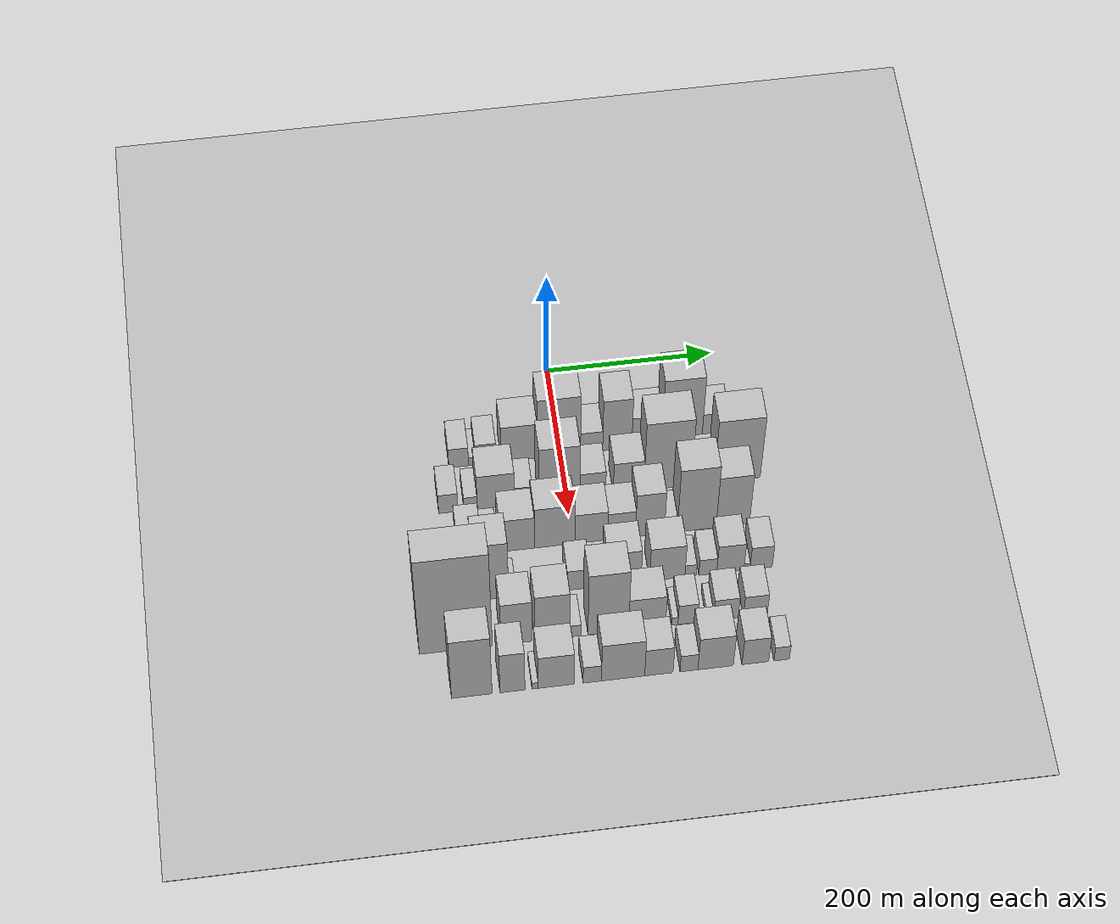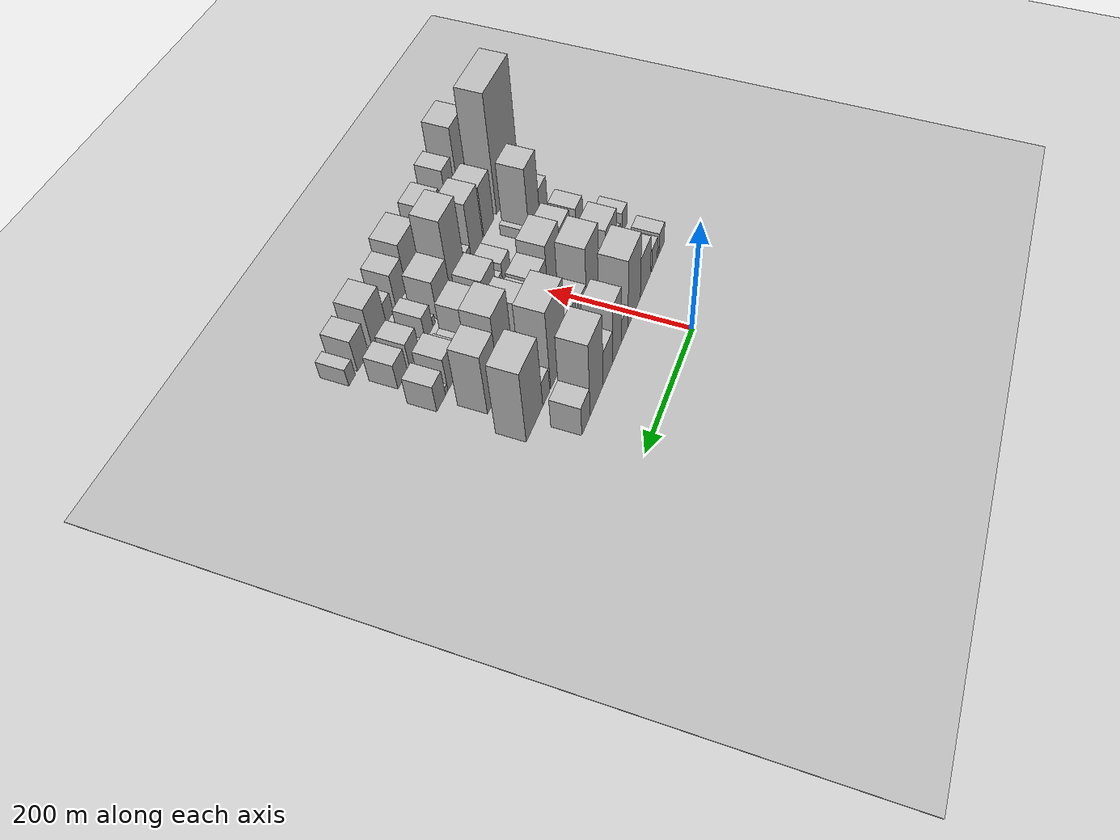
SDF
<sdf version="1.6">
 <world name="default">
  <include><name>ground_plane_1</name><uri>model://HANNAS_ground_plane</uri></include>
  <include>
   <name>ground_plane_2</name>
   <uri>model://HANNAS_ground_plane</uri>
   <pose>100 0 0  0 0 0</pose>
  </include>
  <model name="building_22">
   <static>1</static>
   <pose>100.0000 -120.5780 0 0.000000 0.000000 0.000000</pose>
   <link name="link">
    <pose>0 0 21.00 0 0 0</pose>
    <collision name="collision"><geometry><box><size>40.0000 23.5081 42.0000</size></box></geometry></collision>
    <visual name="visual">
     <cast_shadows>0</cast_shadows>
     <geometry><box><size>40.0000 23.5081 42.0000</size></box></geometry>
     <material>
      <script>
       <uri>model://HANNAS_wall/materials/scripts</uri>
       <uri>model://HANNAS_wall/materials/textures</uri>
       <name>vrc/HANNAS_wall</name>
      </script>
     </material>
    </visual>
   </link>
  </model>
  <model name="building_23">
   <static>1</static>
   <pose>100.0000 -104.7559 0 0.000000 0.000000 0.000000</pose>
   <link name="link">
    <pose>0 0 9.00 0 0 0</pose>
    <collision name="collision"><geometry><box><size>40.0000 8.1360 18.0000</size></box></geometry></collision>
    <visual name="visual">
     <cast_shadows>0</cast_shadows>
     <geometry><box><size>40.0000 8.1360 18.0000</size></box></geometry>
     <material>
      <script>
       <uri>model://HANNAS_wall/materials/scripts</uri>
       <uri>model://HANNAS_wall/materials/textures</uri>
       <name>vrc/HANNAS_wall</name>
      </script>
     </material>
    </visual>
   </link>
  </model>
  <model name="building_24">
   <static>1</static>
   <pose>100.0000 -88.2923 0 0.000000 0.000000 0.000000</pose>
   <link name="link">
    <pose>0 0 22.50 0 0 0</pose>
    <collision name="collision"><geometry><box><size>40.0000 24.7913 45.0000</size></box></geometry></collision>
    <visual name="visual">
     <cast_shadows>0</cast_shadows>
     <geometry><box><size>40.0000 24.7913 45.0000</size></box></geometry>
     <material>
      <script>
       <uri>model://HANNAS_wall/materials/scripts</uri>
       <uri>model://HANNAS_wall/materials/textures</uri>
       <name>vrc/HANNAS_wall</name>
      </script>
     </material>
    </visual>
   </link>
  </model>
  <model name="building_25">
   <static>1</static>
   <pose>100.0000 -48.3048 0 0.000000 0.000000 0.000000</pose>
   <link name="link">
    <pose>0 0 39.00 0 0 0</pose>
    <collision name="collision"><geometry><box><size>40.0000 43.1838 78.0000</size></box></geometry></collision>
    <visual name="visual">
     <cast_shadows>0</cast_shadows>
     <geometry><box><size>40.0000 43.1838 78.0000</size></box></geometry>
     <material>
      <script>
       <uri>model://HANNAS_wall/materials/scripts</uri>
       <uri>model://HANNAS_wall/materials/textures</uri>
       <name>vrc/HANNAS_wall</name>
      </script>
     </material>
    </visual>
   </link>
  </model>
  <model name="building_26">
   <static>1</static>
   <pose>100.0000 -0.9297 0 0.000000 0.000000 0.000000</pose>
   <link name="link">
    <pose>0 0 64.50 0 0 0</pose>
    <collision name="collision"><geometry><box><size>40.0000 51.5664 129.0000</size></box></geometry></collision>
    <visual name="visual">
     <cast_shadows>0</cast_shadows>
     <geometry><box><size>40.0000 51.5664 129.0000</size></box></geometry>
     <material>
      <script>
       <uri>model://HANNAS_wall/materials/scripts</uri>
       <uri>model://HANNAS_wall/materials/textures</uri>
       <name>vrc/HANNAS_wall</name>
      </script>
     </material>
    </visual>
   </link>
  </model>
  <model name="building_27">
   <static>1</static>
   <pose>100.0000 38.0958 0 0.000000 0.000000 0.000000</pose>
   <link name="link">
    <pose>0 0 22.50 0 0 0</pose>
    <collision name="collision"><geometry><box><size>40.0000 26.4845 45.0000</size></box></geometry></collision>
    <visual name="visual">
     <cast_shadows>0</cast_shadows>
     <geometry><box><size>40.0000 26.4845 45.0000</size></box></geometry>
     <material>
      <script>
       <uri>model://HANNAS_wall/materials/scripts</uri>
       <uri>model://HANNAS_wall/materials/textures</uri>
       <name>vrc/HANNAS_wall</name>
      </script>
     </material>
    </visual>
   </link>
  </model>
  <model name="building_28">
   <static>1</static>
   <pose>100.0000 68.7779 0 0.000000 0.000000 0.000000</pose>
   <link name="link">
    <pose>0 0 55.50 0 0 0</pose>
    <collision name="collision"><geometry><box><size>40.0000 34.8797 111.0000</size></box></geometry></collision>
    <visual name="visual">
     <cast_shadows>0</cast_shadows>
     <geometry><box><size>40.0000 34.8797 111.0000</size></box></geometry>
     <material>
      <script>
       <uri>model://HANNAS_wall/materials/scripts</uri>
       <uri>model://HANNAS_wall/materials/textures</uri>
       <name>vrc/HANNAS_wall</name>
      </script>
     </material>
    </visual>
   </link>
  </model>
  <model name="building_29">
   <static>1</static>
   <pose>100.0000 104.3803 0 0.000000 0.000000 0.000000</pose>
   <link name="link">
    <pose>0 0 33.00 0 0 0</pose>
    <collision name="collision"><geometry><box><size>40.0000 36.3250 66.0000</size></box></geometry></collision>
    <visual name="visual">
     <cast_shadows>0</cast_shadows>
     <geometry><box><size>40.0000 36.3250 66.0000</size></box></geometry>
     <material>
      <script>
       <uri>model://HANNAS_wall/materials/scripts</uri>
       <uri>model://HANNAS_wall/materials/textures</uri>
       <name>vrc/HANNAS_wall</name>
      </script>
     </material>
    </visual>
   </link>
  </model>
  <model name="building_30">
   <static>1</static>
   <pose>100.0000 146.4982 0 0.000000 0.000000 0.000000</pose>
   <link name="link">
    <pose>0 0 70.50 0 0 0</pose>
    <collision name="collision"><geometry><box><size>40.0000 47.9109 141.0000</size></box></geometry></collision>
    <visual name="visual">
     <cast_shadows>0</cast_shadows>
     <geometry><box><size>40.0000 47.9109 141.0000</size></box></geometry>
     <material>
      <script>
       <uri>model://HANNAS_wall/materials/scripts</uri>
       <uri>model://HANNAS_wall/materials/textures</uri>
       <name>vrc/HANNAS_wall</name>
      </script>
     </material>
    </visual>
   </link>
  </model>
  <model name="building_31">
   <static>1</static>
   <pose>100.0000 185.6217 0 0.000000 0.000000 0.000000</pose>
   <link name="link">
    <pose>0 0 28.50 0 0 0</pose>
    <collision name="collision"><geometry><box><size>40.0000 30.3360 57.0000</size></box></geometry></collision>
    <visual name="visual">
     <cast_shadows>0</cast_shadows>
     <geometry><box><size>40.0000 30.3360 57.0000</size></box></geometry>
     <material>
      <script>
       <uri>model://HANNAS_wall/materials/scripts</uri>
       <uri>model://HANNAS_wall/materials/textures</uri>
       <name>vrc/HANNAS_wall</name>
      </script>
     </material>
    </visual>
   </link>
  </model>
  <model name="building_80">
   <static>1</static>
   <pose>160.0000 -139.4442 0 0.000000 0.000000 0.000000</pose>
   <link name="link">
    <pose>0 0 21.00 0 0 0</pose>
    <collision name="collision"><geometry><box><size>40.0000 22.8918 42.0000</size></box></geometry></collision>
    <visual name="visual">
     <cast_shadows>0</cast_shadows>
     <geometry><box><size>40.0000 22.8918 42.0000</size></box></geometry>
     <material>
      <script>
       <uri>model://HANNAS_wall/materials/scripts</uri>
       <uri>model://HANNAS_wall/materials/textures</uri>
       <name>vrc/HANNAS_wall</name>
      </script>
     </material>
    </visual>
   </link>
  </model>
  <model name="building_81">
   <static>1</static>
   <pose>160.0000 -113.1133 0 0.000000 0.000000 0.000000</pose>
   <link name="link">
    <pose>0 0 15.00 0 0 0</pose>
    <collision name="collision"><geometry><box><size>40.0000 15.7700 30.0000</size></box></geometry></collision>
    <visual name="visual">
     <cast_shadows>0</cast_shadows>
     <geometry><box><size>40.0000 15.7700 30.0000</size></box></geometry>
     <material>
      <script>
       <uri>model://HANNAS_wall/materials/scripts</uri>
       <uri>model://HANNAS_wall/materials/textures</uri>
       <name>vrc/HANNAS_wall</name>
      </script>
     </material>
    </visual>
   </link>
  </model>
  <model name="building_82">
   <static>1</static>
   <pose>160.0000 -83.1640 0 0.000000 0.000000 0.000000</pose>
   <link name="link">
    <pose>0 0 37.50 0 0 0</pose>
    <collision name="collision"><geometry><box><size>40.0000 44.1286 75.0000</size></box></geometry></collision>
    <visual name="visual">
     <cast_shadows>0</cast_shadows>
     <geometry><box><size>40.0000 44.1286 75.0000</size></box></geometry>
     <material>
      <script>
       <uri>model://HANNAS_wall/materials/scripts</uri>
       <uri>model://HANNAS_wall/materials/textures</uri>
       <name>vrc/HANNAS_wall</name>
      </script>
     </material>
    </visual>
   </link>
  </model>
  <model name="building_83">
   <static>1</static>
   <pose>160.0000 -50.5367 0 0.000000 0.000000 0.000000</pose>
   <link name="link">
    <pose>0 0 19.50 0 0 0</pose>
    <collision name="collision"><geometry><box><size>40.0000 21.1261 39.0000</size></box></geometry></collision>
    <visual name="visual">
     <cast_shadows>0</cast_shadows>
     <geometry><box><size>40.0000 21.1261 39.0000</size></box></geometry>
     <material>
      <script>
       <uri>model://HANNAS_wall/materials/scripts</uri>
       <uri>model://HANNAS_wall/materials/textures</uri>
       <name>vrc/HANNAS_wall</name>
      </script>
     </material>
    </visual>
   </link>
  </model>
  <model name="building_84">
   <static>1</static>
   <pose>160.0000 -8.0050 0 0.000000 0.000000 0.000000</pose>
   <link name="link">
    <pose>0 0 60.00 0 0 0</pose>
    <collision name="collision"><geometry><box><size>40.0000 47.9373 120.0000</size></box></geometry></collision>
    <visual name="visual">
     <cast_shadows>0</cast_shadows>
     <geometry><box><size>40.0000 47.9373 120.0000</size></box></geometry>
     <material>
      <script>
       <uri>model://HANNAS_wall/materials/scripts</uri>
       <uri>model://HANNAS_wall/materials/textures</uri>
       <name>vrc/HANNAS_wall</name>
      </script>
     </material>
    </visual>
   </link>
  </model>
  <model name="building_85">
   <static>1</static>
   <pose>160.0000 31.3682 0 0.000000 0.000000 0.000000</pose>
   <link name="link">
    <pose>0 0 27.00 0 0 0</pose>
    <collision name="collision"><geometry><box><size>40.0000 30.8090 54.0000</size></box></geometry></collision>
    <visual name="visual">
     <cast_shadows>0</cast_shadows>
     <geometry><box><size>40.0000 30.8090 54.0000</size></box></geometry>
     <material>
      <script>
       <uri>model://HANNAS_wall/materials/scripts</uri>
       <uri>model://HANNAS_wall/materials/textures</uri>
       <name>vrc/HANNAS_wall</name>
      </script>
     </material>
    </visual>
   </link>
  </model>
  <model name="building_86">
   <static>1</static>
   <pose>160.0000 73.9550 0 0.000000 0.000000 0.000000</pose>
   <link name="link">
    <pose>0 0 34.50 0 0 0</pose>
    <collision name="collision"><geometry><box><size>40.0000 36.3646 69.0000</size></box></geometry></collision>
    <visual name="visual">
     <cast_shadows>0</cast_shadows>
     <geometry><box><size>40.0000 36.3646 69.0000</size></box></geometry>
     <material>
      <script>
       <uri>model://HANNAS_wall/materials/scripts</uri>
       <uri>model://HANNAS_wall/materials/textures</uri>
       <name>vrc/HANNAS_wall</name>
      </script>
     </material>
    </visual>
   </link>
  </model>
  <model name="building_87">
   <static>1</static>
   <pose>160.0000 120.4749 0 0.000000 0.000000 0.000000</pose>
   <link name="link">
    <pose>0 0 75.00 0 0 0</pose>
    <collision name="collision"><geometry><box><size>40.0000 56.6753 150.0000</size></box></geometry></collision>
    <visual name="visual">
     <cast_shadows>0</cast_shadows>
     <geometry><box><size>40.0000 56.6753 150.0000</size></box></geometry>
     <material>
      <script>
       <uri>model://HANNAS_wall/materials/scripts</uri>
       <uri>model://HANNAS_wall/materials/textures</uri>
       <name>vrc/HANNAS_wall</name>
      </script>
     </material>
    </visual>
   </link>
  </model>
  <model name="building_88">
   <static>1</static>
   <pose>160.0000 163.8272 0 0.000000 0.000000 0.000000</pose>
   <link name="link">
    <pose>0 0 24.00 0 0 0</pose>
    <collision name="collision"><geometry><box><size>40.0000 24.0293 48.0000</size></box></geometry></collision>
    <visual name="visual">
     <cast_shadows>0</cast_shadows>
     <geometry><box><size>40.0000 24.0293 48.0000</size></box></geometry>
     <material>
      <script>
       <uri>model://HANNAS_wall/materials/scripts</uri>
       <uri>model://HANNAS_wall/materials/textures</uri>
       <name>vrc/HANNAS_wall</name>
      </script>
     </material>
    </visual>
   </link>
  </model>
  <model name="building_89">
   <static>1</static>
   <pose>160.0000 203.3554 0 0.000000 0.000000 0.000000</pose>
   <link name="link">
    <pose>0 0 69.00 0 0 0</pose>
    <collision name="collision"><geometry><box><size>40.0000 55.0271 138.0000</size></box></geometry></collision>
    <visual name="visual">
     <cast_shadows>0</cast_shadows>
     <geometry><box><size>40.0000 55.0271 138.0000</size></box></geometry>
     <material>
      <script>
       <uri>model://HANNAS_wall/materials/scripts</uri>
       <uri>model://HANNAS_wall/materials/textures</uri>
       <name>vrc/HANNAS_wall</name>
      </script>
     </material>
    </visual>
   </link>
  </model>
  <model name="building_130">
   <static>1</static>
   <pose>220.0000 -121.2214 0 0.000000 0.000000 0.000000</pose>
   <link name="link">
    <pose>0 0 25.50 0 0 0</pose>
    <collision name="collision"><geometry><box><size>40.0000 27.8881 51.0000</size></box></geometry></collision>
    <visual name="visual">
     <cast_shadows>0</cast_shadows>
     <geometry><box><size>40.0000 27.8881 51.0000</size></box></geometry>
     <material>
      <script>
       <uri>model://HANNAS_wall/materials/scripts</uri>
       <uri>model://HANNAS_wall/materials/textures</uri>
       <name>vrc/HANNAS_wall</name>
      </script>
     </material>
    </visual>
   </link>
  </model>
  <model name="building_131">
   <static>1</static>
   <pose>220.0000 -97.7854 0 0.000000 0.000000 0.000000</pose>
   <link name="link">
    <pose>0 0 18.00 0 0 0</pose>
    <collision name="collision"><geometry><box><size>40.0000 18.9839 36.0000</size></box></geometry></collision>
    <visual name="visual">
     <cast_shadows>0</cast_shadows>
     <geometry><box><size>40.0000 18.9839 36.0000</size></box></geometry>
     <material>
      <script>
       <uri>model://HANNAS_wall/materials/scripts</uri>
       <uri>model://HANNAS_wall/materials/textures</uri>
       <name>vrc/HANNAS_wall</name>
      </script>
     </material>
    </visual>
   </link>
  </model>
  <model name="building_132">
   <static>1</static>
   <pose>220.0000 -65.1639 0 0.000000 0.000000 0.000000</pose>
   <link name="link">
    <pose>0 0 36.00 0 0 0</pose>
    <collision name="collision"><geometry><box><size>40.0000 40.2592 72.0000</size></box></geometry></collision>
    <visual name="visual">
     <cast_shadows>0</cast_shadows>
     <geometry><box><size>40.0000 40.2592 72.0000</size></box></geometry>
     <material>
      <script>
       <uri>model://HANNAS_wall/materials/scripts</uri>
       <uri>model://HANNAS_wall/materials/textures</uri>
       <name>vrc/HANNAS_wall</name>
      </script>
     </material>
    </visual>
   </link>
  </model>
  <model name="building_133">
   <static>1</static>
   <pose>220.0000 -21.2294 0 0.000000 0.000000 0.000000</pose>
   <link name="link">
    <pose>0 0 45.00 0 0 0</pose>
    <collision name="collision"><geometry><box><size>40.0000 47.6098 90.0000</size></box></geometry></collision>
    <visual name="visual">
     <cast_shadows>0</cast_shadows>
     <geometry><box><size>40.0000 47.6098 90.0000</size></box></geometry>
     <material>
      <script>
       <uri>model://HANNAS_wall/materials/scripts</uri>
       <uri>model://HANNAS_wall/materials/textures</uri>
       <name>vrc/HANNAS_wall</name>
      </script>
     </material>
    </visual>
   </link>
  </model>
  <model name="building_134">
   <static>1</static>
   <pose>220.0000 21.8665 0 0.000000 0.000000 0.000000</pose>
   <link name="link">
    <pose>0 0 33.00 0 0 0</pose>
    <collision name="collision"><geometry><box><size>40.0000 38.5819 66.0000</size></box></geometry></collision>
    <visual name="visual">
     <cast_shadows>0</cast_shadows>
     <geometry><box><size>40.0000 38.5819 66.0000</size></box></geometry>
     <material>
      <script>
       <uri>model://HANNAS_wall/materials/scripts</uri>
       <uri>model://HANNAS_wall/materials/textures</uri>
       <name>vrc/HANNAS_wall</name>
      </script>
     </material>
    </visual>
   </link>
  </model>
  <model name="building_135">
   <static>1</static>
   <pose>220.0000 57.3773 0 0.000000 0.000000 0.000000</pose>
   <link name="link">
    <pose>0 0 30.00 0 0 0</pose>
    <collision name="collision"><geometry><box><size>40.0000 32.4398 60.0000</size></box></geometry></collision>
    <visual name="visual">
     <cast_shadows>0</cast_shadows>
     <geometry><box><size>40.0000 32.4398 60.0000</size></box></geometry>
     <material>
      <script>
       <uri>model://HANNAS_wall/materials/scripts</uri>
       <uri>model://HANNAS_wall/materials/textures</uri>
       <name>vrc/HANNAS_wall</name>
      </script>
     </material>
    </visual>
   </link>
  </model>
  <model name="building_136">
   <static>1</static>
   <pose>220.0000 90.6429 0 0.000000 0.000000 0.000000</pose>
   <link name="link">
    <pose>0 0 48.00 0 0 0</pose>
    <collision name="collision"><geometry><box><size>40.0000 34.0913 96.0000</size></box></geometry></collision>
    <visual name="visual">
     <cast_shadows>0</cast_shadows>
     <geometry><box><size>40.0000 34.0913 96.0000</size></box></geometry>
     <material>
      <script>
       <uri>model://HANNAS_wall/materials/scripts</uri>
       <uri>model://HANNAS_wall/materials/textures</uri>
       <name>vrc/HANNAS_wall</name>
      </script>
     </material>
    </visual>
   </link>
  </model>
  <model name="building_137">
   <static>1</static>
   <pose>220.0000 115.3099 0 0.000000 0.000000 0.000000</pose>
   <link name="link">
    <pose>0 0 15.00 0 0 0</pose>
    <collision name="collision"><geometry><box><size>40.0000 15.2427 30.0000</size></box></geometry></collision>
    <visual name="visual">
     <cast_shadows>0</cast_shadows>
     <geometry><box><size>40.0000 15.2427 30.0000</size></box></geometry>
     <material>
      <script>
       <uri>model://HANNAS_wall/materials/scripts</uri>
       <uri>model://HANNAS_wall/materials/textures</uri>
       <name>vrc/HANNAS_wall</name>
      </script>
     </material>
    </visual>
   </link>
  </model>
  <model name="building_138">
   <static>1</static>
   <pose>220.0000 145.8488 0 0.000000 0.000000 0.000000</pose>
   <link name="link">
    <pose>0 0 70.50 0 0 0</pose>
    <collision name="collision"><geometry><box><size>40.0000 45.8351 141.0000</size></box></geometry></collision>
    <visual name="visual">
     <cast_shadows>0</cast_shadows>
     <geometry><box><size>40.0000 45.8351 141.0000</size></box></geometry>
     <material>
      <script>
       <uri>model://HANNAS_wall/materials/scripts</uri>
       <uri>model://HANNAS_wall/materials/textures</uri>
       <name>vrc/HANNAS_wall</name>
      </script>
     </material>
    </visual>
   </link>
  </model>
  <model name="building_139">
   <static>1</static>
   <pose>220.0000 188.4964 0 0.000000 0.000000 0.000000</pose>
   <link name="link">
    <pose>0 0 57.00 0 0 0</pose>
    <collision name="collision"><geometry><box><size>40.0000 39.4601 114.0000</size></box></geometry></collision>
    <visual name="visual">
     <cast_shadows>0</cast_shadows>
     <geometry><box><size>40.0000 39.4601 114.0000</size></box></geometry>
     <material>
      <script>
       <uri>model://HANNAS_wall/materials/scripts</uri>
       <uri>model://HANNAS_wall/materials/textures</uri>
       <name>vrc/HANNAS_wall</name>
      </script>
     </material>
    </visual>
   </link>
  </model>
  <model name="building_181">
   <static>1</static>
   <pose>280.0000 -137.0835 0 0.000000 0.000000 0.000000</pose>
   <link name="link">
    <pose>0 0 27.00 0 0 0</pose>
    <collision name="collision"><geometry><box><size>40.0000 29.7304 54.0000</size></box></geometry></collision>
    <visual name="visual">
     <cast_shadows>0</cast_shadows>
     <geometry><box><size>40.0000 29.7304 54.0000</size></box></geometry>
     <material>
      <script>
       <uri>model://HANNAS_wall/materials/scripts</uri>
       <uri>model://HANNAS_wall/materials/textures</uri>
       <name>vrc/HANNAS_wall</name>
      </script>
     </material>
    </visual>
   </link>
  </model>
  <model name="building_182">
   <static>1</static>
   <pose>280.0000 -102.4195 0 0.000000 0.000000 0.000000</pose>
   <link name="link">
    <pose>0 0 64.50 0 0 0</pose>
    <collision name="collision"><geometry><box><size>40.0000 39.5976 129.0000</size></box></geometry></collision>
    <visual name="visual">
     <cast_shadows>0</cast_shadows>
     <geometry><box><size>40.0000 39.5976 129.0000</size></box></geometry>
     <material>
      <script>
       <uri>model://HANNAS_wall/materials/scripts</uri>
       <uri>model://HANNAS_wall/materials/textures</uri>
       <name>vrc/HANNAS_wall</name>
      </script>
     </material>
    </visual>
   </link>
  </model>
  <model name="building_183">
   <static>1</static>
   <pose>280.0000 -78.2940 0 0.000000 0.000000 0.000000</pose>
   <link name="link">
    <pose>0 0 10.50 0 0 0</pose>
    <collision name="collision"><geometry><box><size>40.0000 8.6533 21.0000</size></box></geometry></collision>
    <visual name="visual">
     <cast_shadows>0</cast_shadows>
     <geometry><box><size>40.0000 8.6533 21.0000</size></box></geometry>
     <material>
      <script>
       <uri>model://HANNAS_wall/materials/scripts</uri>
       <uri>model://HANNAS_wall/materials/textures</uri>
       <name>vrc/HANNAS_wall</name>
      </script>
     </material>
    </visual>
   </link>
  </model>
  <model name="building_184">
   <static>1</static>
   <pose>280.0000 -1.3140 0 0.000000 0.000000 0.000000</pose>
   <link name="link">
    <pose>0 0 22.50 0 0 0</pose>
    <collision name="collision"><geometry><box><size>40.0000 26.4356 45.0000</size></box></geometry></collision>
    <visual name="visual">
     <cast_shadows>0</cast_shadows>
     <geometry><box><size>40.0000 26.4356 45.0000</size></box></geometry>
     <material>
      <script>
       <uri>model://HANNAS_wall/materials/scripts</uri>
       <uri>model://HANNAS_wall/materials/textures</uri>
       <name>vrc/HANNAS_wall</name>
      </script>
     </material>
    </visual>
   </link>
  </model>
  <model name="building_185">
   <static>1</static>
   <pose>280.0000 19.4774 0 0.000000 0.000000 0.000000</pose>
   <link name="link">
    <pose>0 0 15.00 0 0 0</pose>
    <collision name="collision"><geometry><box><size>40.0000 15.1472 30.0000</size></box></geometry></collision>
    <visual name="visual">
     <cast_shadows>0</cast_shadows>
     <geometry><box><size>40.0000 15.1472 30.0000</size></box></geometry>
     <material>
      <script>
       <uri>model://HANNAS_wall/materials/scripts</uri>
       <uri>model://HANNAS_wall/materials/textures</uri>
       <name>vrc/HANNAS_wall</name>
      </script>
     </material>
    </visual>
   </link>
  </model>
  <model name="building_186">
   <static>1</static>
   <pose>280.0000 51.8087 0 0.000000 0.000000 0.000000</pose>
   <link name="link">
    <pose>0 0 37.50 0 0 0</pose>
    <collision name="collision"><geometry><box><size>40.0000 39.5154 75.0000</size></box></geometry></collision>
    <visual name="visual">
     <cast_shadows>0</cast_shadows>
     <geometry><box><size>40.0000 39.5154 75.0000</size></box></geometry>
     <material>
      <script>
       <uri>model://HANNAS_wall/materials/scripts</uri>
       <uri>model://HANNAS_wall/materials/textures</uri>
       <name>vrc/HANNAS_wall</name>
      </script>
     </material>
    </visual>
   </link>
  </model>
  <model name="building_187">
   <static>1</static>
   <pose>280.0000 102.1870 0 0.000000 0.000000 0.000000</pose>
   <link name="link">
    <pose>0 0 37.50 0 0 0</pose>
    <collision name="collision"><geometry><box><size>40.0000 41.2413 75.0000</size></box></geometry></collision>
    <visual name="visual">
     <cast_shadows>0</cast_shadows>
     <geometry><box><size>40.0000 41.2413 75.0000</size></box></geometry>
     <material>
      <script>
       <uri>model://HANNAS_wall/materials/scripts</uri>
       <uri>model://HANNAS_wall/materials/textures</uri>
       <name>vrc/HANNAS_wall</name>
      </script>
     </material>
    </visual>
   </link>
  </model>
  <model name="building_188">
   <static>1</static>
   <pose>280.0000 129.5320 0 0.000000 0.000000 0.000000</pose>
   <link name="link">
    <pose>0 0 13.50 0 0 0</pose>
    <collision name="collision"><geometry><box><size>40.0000 13.4486 27.0000</size></box></geometry></collision>
    <visual name="visual">
     <cast_shadows>0</cast_shadows>
     <geometry><box><size>40.0000 13.4486 27.0000</size></box></geometry>
     <material>
      <script>
       <uri>model://HANNAS_wall/materials/scripts</uri>
       <uri>model://HANNAS_wall/materials/textures</uri>
       <name>vrc/HANNAS_wall</name>
      </script>
     </material>
    </visual>
   </link>
  </model>
  <model name="building_189">
   <static>1</static>
   <pose>280.0000 149.7160 0 0.000000 0.000000 0.000000</pose>
   <link name="link">
    <pose>0 0 18.00 0 0 0</pose>
    <collision name="collision"><geometry><box><size>40.0000 20.9194 36.0000</size></box></geometry></collision>
    <visual name="visual">
     <cast_shadows>0</cast_shadows>
     <geometry><box><size>40.0000 20.9194 36.0000</size></box></geometry>
     <material>
      <script>
       <uri>model://HANNAS_wall/materials/scripts</uri>
       <uri>model://HANNAS_wall/materials/textures</uri>
       <name>vrc/HANNAS_wall</name>
      </script>
     </material>
    </visual>
   </link>
  </model>
  <model name="building_190">
   <static>1</static>
   <pose>280.0000 176.0849 0 0.000000 0.000000 0.000000</pose>
   <link name="link">
    <pose>0 0 31.50 0 0 0</pose>
    <collision name="collision"><geometry><box><size>40.0000 31.8184 63.0000</size></box></geometry></collision>
    <visual name="visual">
     <cast_shadows>0</cast_shadows>
     <geometry><box><size>40.0000 31.8184 63.0000</size></box></geometry>
     <material>
      <script>
       <uri>model://HANNAS_wall/materials/scripts</uri>
       <uri>model://HANNAS_wall/materials/textures</uri>
       <name>vrc/HANNAS_wall</name>
      </script>
     </material>
    </visual>
   </link>
  </model>
  <model name="building_191">
   <static>1</static>
   <pose>280.0000 195.6024 0 0.000000 0.000000 0.000000</pose>
   <link name="link">
    <pose>0 0 7.50 0 0 0</pose>
    <collision name="collision"><geometry><box><size>40.0000 7.2167 15.0000</size></box></geometry></collision>
    <visual name="visual">
     <cast_shadows>0</cast_shadows>
     <geometry><box><size>40.0000 7.2167 15.0000</size></box></geometry>
     <material>
      <script>
       <uri>model://HANNAS_wall/materials/scripts</uri>
       <uri>model://HANNAS_wall/materials/textures</uri>
       <name>vrc/HANNAS_wall</name>
      </script>
     </material>
    </visual>
   </link>
  </model>
  <model name="building_192">
   <static>1</static>
   <pose>280.0000 212.2427 0 0.000000 0.000000 0.000000</pose>
   <link name="link">
    <pose>0 0 25.50 0 0 0</pose>
    <collision name="collision"><geometry><box><size>40.0000 26.0639 51.0000</size></box></geometry></collision>
    <visual name="visual">
     <cast_shadows>0</cast_shadows>
     <geometry><box><size>40.0000 26.0639 51.0000</size></box></geometry>
     <material>
      <script>
       <uri>model://HANNAS_wall/materials/scripts</uri>
       <uri>model://HANNAS_wall/materials/textures</uri>
       <name>vrc/HANNAS_wall</name>
      </script>
     </material>
    </visual>
   </link>
  </model>
  <model name="building_234">
   <static>1</static>
   <pose>340.0000 -150.5893 0 0.000000 0.000000 0.000000</pose>
   <link name="link">
    <pose>0 0 109.50 0 0 0</pose>
    <collision name="collision"><geometry><box><size>40.0000 83.8002 219.0000</size></box></geometry></collision>
    <visual name="visual">
     <cast_shadows>0</cast_shadows>
     <geometry><box><size>40.0000 83.8002 219.0000</size></box></geometry>
     <material>
      <script>
       <uri>model://HANNAS_wall/materials/scripts</uri>
       <uri>model://HANNAS_wall/materials/textures</uri>
       <name>vrc/HANNAS_wall</name>
      </script>
     </material>
    </visual>
   </link>
  </model>
  <model name="building_235">
   <static>1</static>
   <pose>340.0000 -80.6524 0 0.000000 0.000000 0.000000</pose>
   <link name="link">
    <pose>0 0 48.00 0 0 0</pose>
    <collision name="collision"><geometry><box><size>40.0000 36.0737 96.0000</size></box></geometry></collision>
    <visual name="visual">
     <cast_shadows>0</cast_shadows>
     <geometry><box><size>40.0000 36.0737 96.0000</size></box></geometry>
     <material>
      <script>
       <uri>model://HANNAS_wall/materials/scripts</uri>
       <uri>model://HANNAS_wall/materials/textures</uri>
       <name>vrc/HANNAS_wall</name>
      </script>
     </material>
    </visual>
   </link>
  </model>
  <model name="building_236">
   <static>1</static>
   <pose>340.0000 -39.5212 0 0.000000 0.000000 0.000000</pose>
   <link name="link">
    <pose>0 0 52.50 0 0 0</pose>
    <collision name="collision"><geometry><box><size>40.0000 40.1887 105.0000</size></box></geometry></collision>
    <visual name="visual">
     <cast_shadows>0</cast_shadows>
     <geometry><box><size>40.0000 40.1887 105.0000</size></box></geometry>
     <material>
      <script>
       <uri>model://HANNAS_wall/materials/scripts</uri>
       <uri>model://HANNAS_wall/materials/textures</uri>
       <name>vrc/HANNAS_wall</name>
      </script>
     </material>
    </visual>
   </link>
  </model>
  <model name="building_237">
   <static>1</static>
   <pose>340.0000 -12.9080 0 0.000000 0.000000 0.000000</pose>
   <link name="link">
    <pose>0 0 13.50 0 0 0</pose>
    <collision name="collision"><geometry><box><size>40.0000 13.0377 27.0000</size></box></geometry></collision>
    <visual name="visual">
     <cast_shadows>0</cast_shadows>
     <geometry><box><size>40.0000 13.0377 27.0000</size></box></geometry>
     <material>
      <script>
       <uri>model://HANNAS_wall/materials/scripts</uri>
       <uri>model://HANNAS_wall/materials/textures</uri>
       <name>vrc/HANNAS_wall</name>
      </script>
     </material>
    </visual>
   </link>
  </model>
  <model name="building_238">
   <static>1</static>
   <pose>340.0000 25.1147 0 0.000000 0.000000 0.000000</pose>
   <link name="link">
    <pose>0 0 70.50 0 0 0</pose>
    <collision name="collision"><geometry><box><size>40.0000 47.0076 141.0000</size></box></geometry></collision>
    <visual name="visual">
     <cast_shadows>0</cast_shadows>
     <geometry><box><size>40.0000 47.0076 141.0000</size></box></geometry>
     <material>
      <script>
       <uri>model://HANNAS_wall/materials/scripts</uri>
       <uri>model://HANNAS_wall/materials/textures</uri>
       <name>vrc/HANNAS_wall</name>
      </script>
     </material>
    </visual>
   </link>
  </model>
  <model name="building_239">
   <static>1</static>
   <pose>340.0000 69.9836 0 0.000000 0.000000 0.000000</pose>
   <link name="link">
    <pose>0 0 36.00 0 0 0</pose>
    <collision name="collision"><geometry><box><size>40.0000 42.7301 72.0000</size></box></geometry></collision>
    <visual name="visual">
     <cast_shadows>0</cast_shadows>
     <geometry><box><size>40.0000 42.7301 72.0000</size></box></geometry>
     <material>
      <script>
       <uri>model://HANNAS_wall/materials/scripts</uri>
       <uri>model://HANNAS_wall/materials/textures</uri>
       <name>vrc/HANNAS_wall</name>
      </script>
     </material>
    </visual>
   </link>
  </model>
  <model name="building_240">
   <static>1</static>
   <pose>340.0000 102.0348 0 0.000000 0.000000 0.000000</pose>
   <link name="link">
    <pose>0 0 9.00 0 0 0</pose>
    <collision name="collision"><geometry><box><size>40.0000 7.3724 18.0000</size></box></geometry></collision>
    <visual name="visual">
     <cast_shadows>0</cast_shadows>
     <geometry><box><size>40.0000 7.3724 18.0000</size></box></geometry>
     <material>
      <script>
       <uri>model://HANNAS_wall/materials/scripts</uri>
       <uri>model://HANNAS_wall/materials/textures</uri>
       <name>vrc/HANNAS_wall</name>
      </script>
     </material>
    </visual>
   </link>
  </model>
  <model name="building_241">
   <static>1</static>
   <pose>340.0000 117.3367 0 0.000000 0.000000 0.000000</pose>
   <link name="link">
    <pose>0 0 22.50 0 0 0</pose>
    <collision name="collision"><geometry><box><size>40.0000 23.2315 45.0000</size></box></geometry></collision>
    <visual name="visual">
     <cast_shadows>0</cast_shadows>
     <geometry><box><size>40.0000 23.2315 45.0000</size></box></geometry>
     <material>
      <script>
       <uri>model://HANNAS_wall/materials/scripts</uri>
       <uri>model://HANNAS_wall/materials/textures</uri>
       <name>vrc/HANNAS_wall</name>
      </script>
     </material>
    </visual>
   </link>
  </model>
  <model name="building_242">
   <static>1</static>
   <pose>340.0000 142.9578 0 0.000000 0.000000 0.000000</pose>
   <link name="link">
    <pose>0 0 9.00 0 0 0</pose>
    <collision name="collision"><geometry><box><size>40.0000 8.0106 18.0000</size></box></geometry></collision>
    <visual name="visual">
     <cast_shadows>0</cast_shadows>
     <geometry><box><size>40.0000 8.0106 18.0000</size></box></geometry>
     <material>
      <script>
       <uri>model://HANNAS_wall/materials/scripts</uri>
       <uri>model://HANNAS_wall/materials/textures</uri>
       <name>vrc/HANNAS_wall</name>
      </script>
     </material>
    </visual>
   </link>
  </model>
  <model name="building_243">
   <static>1</static>
   <pose>340.0000 161.3566 0 0.000000 0.000000 0.000000</pose>
   <link name="link">
    <pose>0 0 24.00 0 0 0</pose>
    <collision name="collision"><geometry><box><size>40.0000 28.7870 48.0000</size></box></geometry></collision>
    <visual name="visual">
     <cast_shadows>0</cast_shadows>
     <geometry><box><size>40.0000 28.7870 48.0000</size></box></geometry>
     <material>
      <script>
       <uri>model://HANNAS_wall/materials/scripts</uri>
       <uri>model://HANNAS_wall/materials/textures</uri>
       <name>vrc/HANNAS_wall</name>
      </script>
     </material>
    </visual>
   </link>
  </model>
  <model name="building_244">
   <static>1</static>
   <pose>340.0000 195.6562 0 0.000000 0.000000 0.000000</pose>
   <link name="link">
    <pose>0 0 24.00 0 0 0</pose>
    <collision name="collision"><geometry><box><size>40.0000 27.8123 48.0000</size></box></geometry></collision>
    <visual name="visual">
     <cast_shadows>0</cast_shadows>
     <geometry><box><size>40.0000 27.8123 48.0000</size></box></geometry>
     <material>
      <script>
       <uri>model://HANNAS_wall/materials/scripts</uri>
       <uri>model://HANNAS_wall/materials/textures</uri>
       <name>vrc/HANNAS_wall</name>
      </script>
     </material>
    </visual>
   </link>
  </model>
  <model name="building_287">
   <static>1</static>
   <pose>400.0000 -139.1371 0 0.000000 0.000000 0.000000</pose>
   <link name="link">
    <pose>0 0 69.00 0 0 0</pose>
    <collision name="collision"><geometry><box><size>40.0000 46.2915 138.0000</size></box></geometry></collision>
    <visual name="visual">
     <cast_shadows>0</cast_shadows>
     <geometry><box><size>40.0000 46.2915 138.0000</size></box></geometry>
     <material>
      <script>
       <uri>model://HANNAS_wall/materials/scripts</uri>
       <uri>model://HANNAS_wall/materials/textures</uri>
       <name>vrc/HANNAS_wall</name>
      </script>
     </material>
    </visual>
   </link>
  </model>
  <model name="building_288">
   <static>1</static>
   <pose>400.0000 -92.7322 0 0.000000 0.000000 0.000000</pose>
   <link name="link">
    <pose>0 0 46.50 0 0 0</pose>
    <collision name="collision"><geometry><box><size>40.0000 28.5182 93.0000</size></box></geometry></collision>
    <visual name="visual">
     <cast_shadows>0</cast_shadows>
     <geometry><box><size>40.0000 28.5182 93.0000</size></box></geometry>
     <material>
      <script>
       <uri>model://HANNAS_wall/materials/scripts</uri>
       <uri>model://HANNAS_wall/materials/textures</uri>
       <name>vrc/HANNAS_wall</name>
      </script>
     </material>
    </visual>
   </link>
  </model>
  <model name="building_289">
   <static>1</static>
   <pose>400.0000 -66.9647 0 0.000000 0.000000 0.000000</pose>
   <link name="link">
    <pose>0 0 7.50 0 0 0</pose>
    <collision name="collision"><geometry><box><size>40.0000 7.0168 15.0000</size></box></geometry></collision>
    <visual name="visual">
     <cast_shadows>0</cast_shadows>
     <geometry><box><size>40.0000 7.0168 15.0000</size></box></geometry>
     <material>
      <script>
       <uri>model://HANNAS_wall/materials/scripts</uri>
       <uri>model://HANNAS_wall/materials/textures</uri>
       <name>vrc/HANNAS_wall</name>
      </script>
     </material>
    </visual>
   </link>
  </model>
  <model name="building_290">
   <static>1</static>
   <pose>400.0000 -42.7317 0 0.000000 0.000000 0.000000</pose>
   <link name="link">
    <pose>0 0 37.50 0 0 0</pose>
    <collision name="collision"><geometry><box><size>40.0000 41.4491 75.0000</size></box></geometry></collision>
    <visual name="visual">
     <cast_shadows>0</cast_shadows>
     <geometry><box><size>40.0000 41.4491 75.0000</size></box></geometry>
     <material>
      <script>
       <uri>model://HANNAS_wall/materials/scripts</uri>
       <uri>model://HANNAS_wall/materials/textures</uri>
       <name>vrc/HANNAS_wall</name>
      </script>
     </material>
    </visual>
   </link>
  </model>
  <model name="building_291">
   <static>1</static>
   <pose>400.0000 -1.5340 0 0.000000 0.000000 0.000000</pose>
   <link name="link">
    <pose>0 0 19.50 0 0 0</pose>
    <collision name="collision"><geometry><box><size>40.0000 20.9463 39.0000</size></box></geometry></collision>
    <visual name="visual">
     <cast_shadows>0</cast_shadows>
     <geometry><box><size>40.0000 20.9463 39.0000</size></box></geometry>
     <material>
      <script>
       <uri>model://HANNAS_wall/materials/scripts</uri>
       <uri>model://HANNAS_wall/materials/textures</uri>
       <name>vrc/HANNAS_wall</name>
      </script>
     </material>
    </visual>
   </link>
  </model>
  <model name="building_292">
   <static>1</static>
   <pose>400.0000 33.7509 0 0.000000 0.000000 0.000000</pose>
   <link name="link">
    <pose>0 0 43.50 0 0 0</pose>
    <collision name="collision"><geometry><box><size>40.0000 49.6236 87.0000</size></box></geometry></collision>
    <visual name="visual">
     <cast_shadows>0</cast_shadows>
     <geometry><box><size>40.0000 49.6236 87.0000</size></box></geometry>
     <material>
      <script>
       <uri>model://HANNAS_wall/materials/scripts</uri>
       <uri>model://HANNAS_wall/materials/textures</uri>
       <name>vrc/HANNAS_wall</name>
      </script>
     </material>
    </visual>
   </link>
  </model>
  <model name="building_293">
   <static>1</static>
   <pose>400.0000 74.8447 0 0.000000 0.000000 0.000000</pose>
   <link name="link">
    <pose>0 0 31.50 0 0 0</pose>
    <collision name="collision"><geometry><box><size>40.0000 32.5639 63.0000</size></box></geometry></collision>
    <visual name="visual">
     <cast_shadows>0</cast_shadows>
     <geometry><box><size>40.0000 32.5639 63.0000</size></box></geometry>
     <material>
      <script>
       <uri>model://HANNAS_wall/materials/scripts</uri>
       <uri>model://HANNAS_wall/materials/textures</uri>
       <name>vrc/HANNAS_wall</name>
      </script>
     </material>
    </visual>
   </link>
  </model>
  <model name="building_294">
   <static>1</static>
   <pose>400.0000 109.4042 0 0.000000 0.000000 0.000000</pose>
   <link name="link">
    <pose>0 0 19.50 0 0 0</pose>
    <collision name="collision"><geometry><box><size>40.0000 20.5551 39.0000</size></box></geometry></collision>
    <visual name="visual">
     <cast_shadows>0</cast_shadows>
     <geometry><box><size>40.0000 20.5551 39.0000</size></box></geometry>
     <material>
      <script>
       <uri>model://HANNAS_wall/materials/scripts</uri>
       <uri>model://HANNAS_wall/materials/textures</uri>
       <name>vrc/HANNAS_wall</name>
      </script>
     </material>
    </visual>
   </link>
  </model>
  <model name="building_295">
   <static>1</static>
   <pose>400.0000 140.0862 0 0.000000 0.000000 0.000000</pose>
   <link name="link">
    <pose>0 0 37.50 0 0 0</pose>
    <collision name="collision"><geometry><box><size>40.0000 40.8089 75.0000</size></box></geometry></collision>
    <visual name="visual">
     <cast_shadows>0</cast_shadows>
     <geometry><box><size>40.0000 40.8089 75.0000</size></box></geometry>
     <material>
      <script>
       <uri>model://HANNAS_wall/materials/scripts</uri>
       <uri>model://HANNAS_wall/materials/textures</uri>
       <name>vrc/HANNAS_wall</name>
      </script>
     </material>
    </visual>
   </link>
  </model>
  <model name="building_296">
   <static>1</static>
   <pose>400.0000 185.8905 0 0.000000 0.000000 0.000000</pose>
   <link name="link">
    <pose>0 0 30.00 0 0 0</pose>
    <collision name="collision"><geometry><box><size>40.0000 30.7997 60.0000</size></box></geometry></collision>
    <visual name="visual">
     <cast_shadows>0</cast_shadows>
     <geometry><box><size>40.0000 30.7997 60.0000</size></box></geometry>
     <material>
      <script>
       <uri>model://HANNAS_wall/materials/scripts</uri>
       <uri>model://HANNAS_wall/materials/textures</uri>
       <name>vrc/HANNAS_wall</name>
      </script>
     </material>
    </visual>
   </link>
  </model>
  <model name="building_297">
   <static>1</static>
   <pose>400.0000 216.2136 0 0.000000 0.000000 0.000000</pose>
   <link name="link">
    <pose>0 0 16.50 0 0 0</pose>
    <collision name="collision"><geometry><box><size>40.0000 17.8466 33.0000</size></box></geometry></collision>
    <visual name="visual">
     <cast_shadows>0</cast_shadows>
     <geometry><box><size>40.0000 17.8466 33.0000</size></box></geometry>
     <material>
      <script>
       <uri>model://HANNAS_wall/materials/scripts</uri>
       <uri>model://HANNAS_wall/materials/textures</uri>
       <name>vrc/HANNAS_wall</name>
      </script>
     </material>
    </visual>
   </link>
  </model>
 </world>
</sdf>
